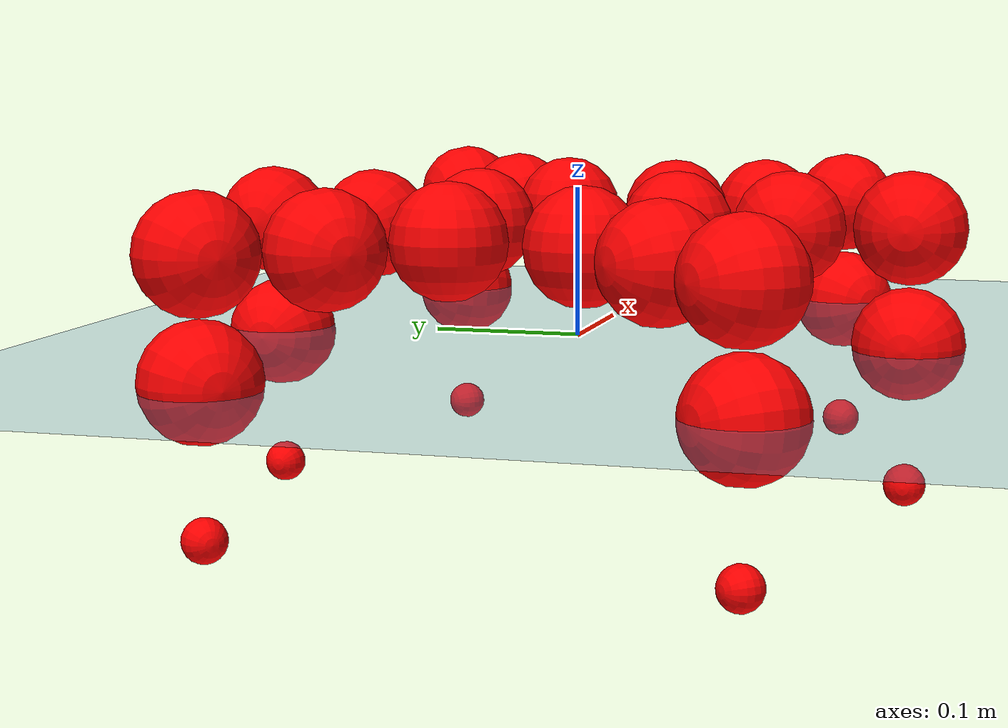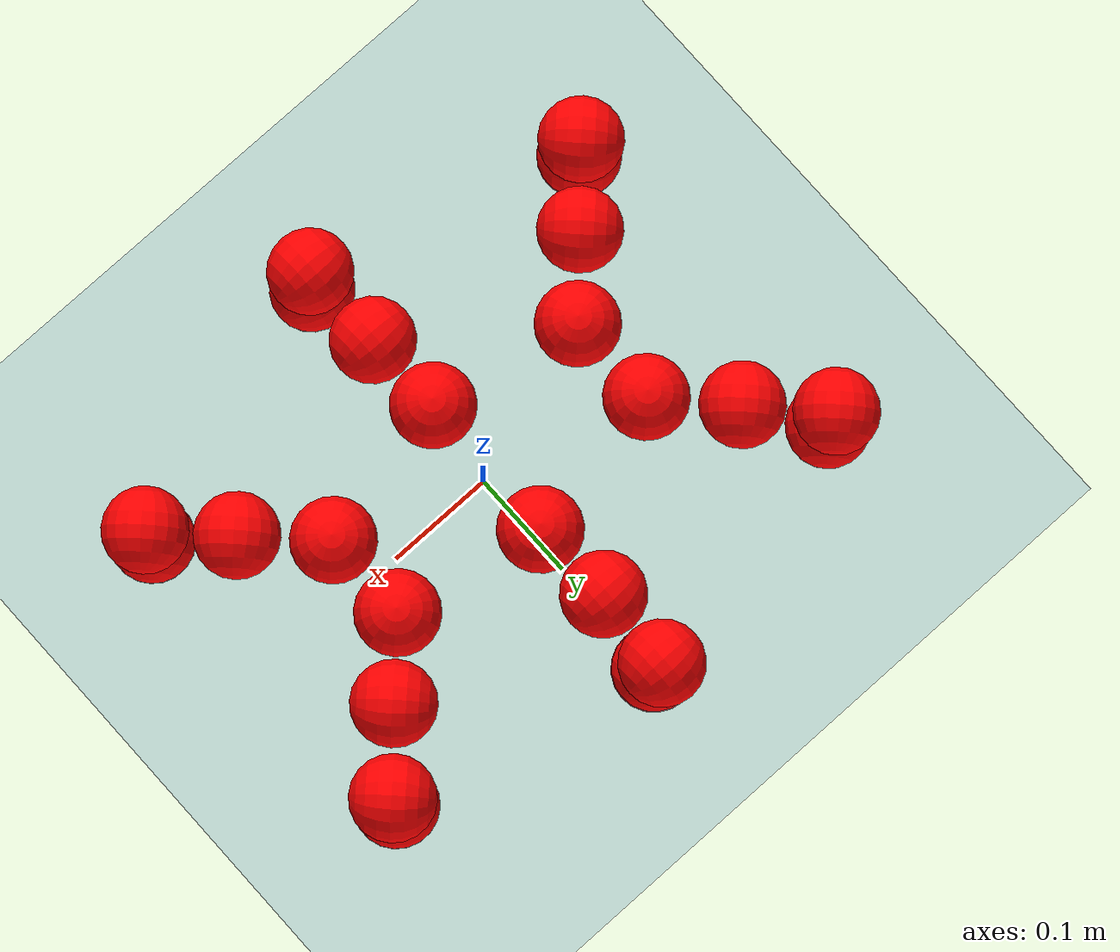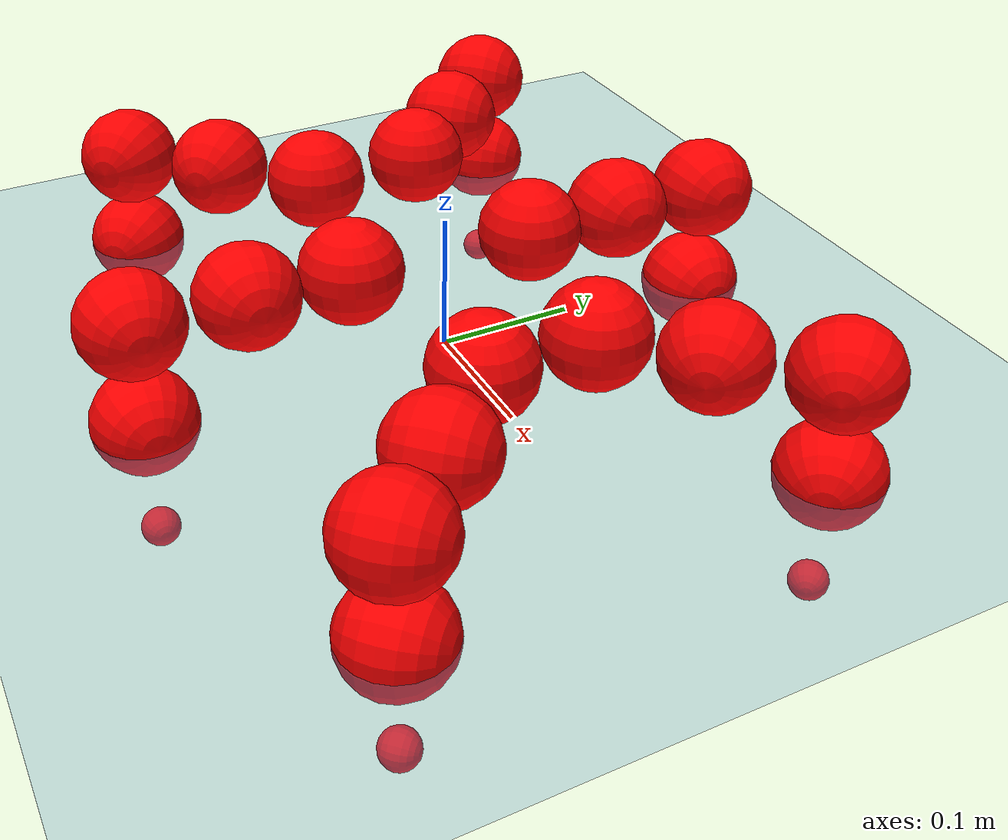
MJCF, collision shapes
<mujoco model="Golem">
  <compiler angle="radian" assetdir="assets" balanceinertia="true" inertiafromgeom="false"/>

  <option timestep="0.005" density="1.2" viscosity="2e-05"/>

  <size nkey="1"/>

  <visual>
    <quality shadowsize="8192"/>
    <map shadowclip="0.5"/>
  </visual>

  <default>
    <default class="/">
      <joint armature="0.01" damping="0.01" frictionloss="0.01"/>
      <geom contype="0" conaffinity="0" group="1" solref="-1000 -80"/>
      <site size="0.01 0.005 0.005" group="5"/>
      <general forcelimited="true" biastype="affine" gainprm="25" biasprm="0 -25 -0.5"/>
      <default class="visual">
        <geom type="mesh" group="2"/>
      </default>
      <default class="collision">
        <geom group="3"/>
      </default>
      <default class="foot">
        <geom size="0.01 0 0" condim="6" group="4" priority="1" solimp="0.015 1 0.01"/>
      </default>
      <default class="reward_collision_sphere">
        <geom group="5" rgba="1 0 0 1"/>
      </default>
    </default>
  </default>

  <asset>
    <texture type="skybox" colorspace="auto" name="//unnamed_texture_0" builtin="gradient" rgb1="0.95 0.95 0.95" rgb2="0.95 0.95 0.95" width="100" height="600"/>
    <texture type="2d" colorspace="auto" name="texplane" builtin="checker" rgb1="0.345 0.575 0.748" rgb2="0.345 0.575 0.748" markrgb="1 1 1" width="512" height="512"/>
    <material name="MatPlane" class="/" texture="texplane" texuniform="true" texrepeat="2 2" specular="0.9"/>
    <mesh name="body" class="/" file="body.stl" scale="0.001 0.001 0.001"/>
    <mesh name="coxa" class="/" file="coxa.stl" scale="0.001 0.001 0.001"/>
    <mesh name="femur" class="/" file="femur.stl" scale="0.001 0.001 0.001"/>
    <mesh name="tibia" class="/" file="tibia.stl" scale="0.001 0.001 0.001"/>
    <mesh name="tarsus" class="/" file="tarsus.stl" scale="0.001 0.001 0.001"/>
  </asset>

  <worldbody>
    <geom name="floor" class="/" size="100 100 0.125" type="plane" group="0" material="MatPlane"/>
    <light name="toplight_shadow" class="/" pos="0 0 5" dir="0.0990148 0.0990148 -0.990148" type="directional" ambient="0.04 0.04 0.04" diffuse="0.55 0.55 0.55" specular="0.12 0.12 0.12"/>
    <light name="toplight_fill" class="/" pos="0 0 5" dir="0.0990148 0.0990148 -0.990148" type="directional" castshadow="false" ambient="0.04 0.04 0.04" diffuse="0.3 0.3 0.3" specular="0.08 0.08 0.08"/>
    <body name="trunk" pos="-0.00275433 0.000442374 -0.00093226" quat="1 0.000726588 -0.000219822 0.000282758">
      <inertial pos="0.000758161 0.000793492 -0.000449957" quat="0.999906 0.00693282 0.0090554 -0.00761315" mass="2.84225" diaginertia="0.00491206 0.00210787 0.0217072"/>
      <joint name="//unnamed_joint_0" type="free"/>
      <geom name="//unnamed_geom_1" class="/" pos="0 0 0.0750645" quat="1 0 0 0" type="mesh" rgba="0.9 0.9 0.9 1" mesh="body"/>
      <site name="imu" class="/" pos="0.11323 0.0120506 0.104291" size="0.0092524"/>
      <camera name="track" class="/" pos="0 -1.4641 0" quat="0.707107 0.707107 0 0" mode="trackcom"/>
      <camera name="ego_camera" class="/" pos="0.113202 0 0.117288" quat="-0.5 -0.5 0.5 0.5"/>
      <body name="coxa_RR" pos="-0.156585 -0.0586137 0.077233" quat="0.382607 -4.34342e-05 0.00111757 -0.923911">
        <inertial pos="0.00282891 0.00237315 0.00267613" quat="0.99999 -0.00203185 -0.00179504 0.00342606" mass="0.164914" diaginertia="0.00512292 0.00220154 0.022373"/>
        <joint name="coxa_joint_RR" class="/" pos="0 0 0" axis="0.000714102 -0.00071176 -0.999999" range="-3.13894 3.12007" armature="0.00977882" damping="0.0174487" frictionloss="0.00903691"/>
        <geom name="//unnamed_geom_2" class="/" type="mesh" rgba="0.2 0.2 0.2 1" mesh="coxa"/>
        <geom name="//unnamed_geom_3" class="reward_collision_sphere" size="0.0370096" pos="-0.0261236 0 0"/>
        <body name="femur_RR" pos="0.0542545 0.00242244 -0.00144343" quat="0.499618 -0.499008 0.50118 0.500192">
          <inertial pos="0.00199623 0.00210312 -4.88727e-05" quat="0.999946 -0.00864337 0.00281516 -0.00498424" mass="0.156405" diaginertia="0.005001 0.00209345 0.0219517"/>
          <joint name="femur_joint_RR" class="/" pos="0 0 0" axis="-0.0024987 0.0019255 -0.999995" stiffness="0.0106248" range="-3.08377 3.08237" armature="0.00938499" damping="0.020779" frictionloss="0.010277"/>
          <geom name="//unnamed_geom_4" class="/" type="mesh" rgba="0.9 0.9 0.9 1" mesh="femur"/>
          <geom name="//unnamed_geom_5" class="reward_collision_sphere" size="0.0370096"/>
          <body name="tibia_RR" pos="0.00127617 -0.077601 0.00339076" quat="-0.00121263 0.999999 0.000626114 -0.000437042">
            <inertial pos="-0.00276347 -0.00103498 -0.000967187" quat="0.999935 0.00362242 -0.00559105 -0.00925882" mass="0.160488" diaginertia="0.00515066 0.00213398 0.0229745"/>
            <joint name="tibia_joint_RR" class="/" pos="0 0 0" axis="0.0122143 -0.00432596 0.999916" stiffness="0.0100993" range="-3.18115 3.14427" armature="0.00901631" damping="0.00162071" frictionloss="0.00916101"/>
            <geom name="//unnamed_geom_6" class="/" type="mesh" rgba="0.2 0.2 0.2 1" mesh="tibia"/>
            <geom name="//unnamed_geom_7" class="reward_collision_sphere" size="0.0370096"/>
            <body name="tarsus_RR" pos="0.0748598 0.00264252 -0.000433402" quat="0.999999 0.000953246 0.000152765 -0.000919614">
              <inertial pos="0.0509234 0.00138313 -0.00202222" quat="0.498918 0.499245 0.500205 0.501627" mass="0.162351" diaginertia="0.00513016 0.00217783 0.0224498"/>
              <joint name="tarsus_joint_RR" class="/" pos="0 0 0" axis="-0.00102163 0.00901525 0.999959" range="-3.13149 3.14003" armature="0.00892652" damping="0.0351585" frictionloss="0.00805906"/>
              <geom name="//unnamed_geom_8" class="/" type="mesh" rgba="0.9 0.9 0.9 1" mesh="tarsus"/>
              <geom name="foot_1" class="foot" size="0.00926576" pos="0.0975281 0 0" quat="0 -0.707107 0 0.707107"/>
              <geom name="//unnamed_geom_10" class="reward_collision_sphere" size="0.0370096"/>
              <geom name="//unnamed_geom_11" class="reward_collision_sphere" size="0.0138786" pos="0.0936096 0 0"/>
              <site name="foot_1" class="foot" pos="0.0975281 0 0" quat="0 -0.707107 0 0.707107" size="0.0092524"/>
            </body>
          </body>
        </body>
      </body>
      <body name="coxa_RM" pos="-0.00208221 -0.0953117 0.0769753" quat="0.707419 -0.00064116 -8.43929e-05 -0.706794">
        <inertial pos="-0.00201726 -0.000850361 -9.15798e-05" quat="0.999999 -0.000749603 0.000159941 -0.000825113" mass="0.162906" diaginertia="0.00496519 0.00222093 0.0225727"/>
        <joint name="coxa_joint_RM" class="/" pos="0 0 0" axis="0.00225395 -0.00174086 -0.999996" range="-3.0871 3.12746" armature="0.0106102" damping="0.00868665" frictionloss="0.00928605"/>
        <geom name="//unnamed_geom_12" class="/" type="mesh" rgba="0.2 0.2 0.2 1" mesh="coxa"/>
        <geom name="//unnamed_geom_13" class="reward_collision_sphere" size="0.0370096" pos="-0.0261236 0 0"/>
        <body name="femur_RM" pos="0.0484536 0.00102225 0.00141649" quat="0.49892 -0.500187 0.500967 0.499924">
          <inertial pos="-0.000860939 -0.00292428 0.00194213" quat="0.999979 0.00432855 -0.00481072 -0.000263705" mass="0.161458" diaginertia="0.00479776 0.00205834 0.0218179"/>
          <joint name="femur_joint_RM" class="/" pos="0 0 0" axis="0.00180782 -0.000675301 -0.999998" stiffness="0.00111096" range="-3.16238 3.11999" armature="0.00863542" damping="0.016275" frictionloss="0.00926914"/>
          <geom name="//unnamed_geom_14" class="/" type="mesh" rgba="0.9 0.9 0.9 1" mesh="femur"/>
          <geom name="//unnamed_geom_15" class="reward_collision_sphere" size="0.0370096"/>
          <body name="tibia_RM" pos="-0.00141888 -0.0781963 0.000685629" quat="-0.000473032 1 2.78421e-05 4.54176e-05">
            <inertial pos="-0.00282867 -0.000573752 -0.00078872" quat="0.99991 0.00301746 -0.000328849 0.0130407" mass="0.159177" diaginertia="0.00510774 0.00207428 0.0221771"/>
            <joint name="tibia_joint_RM" class="/" pos="0 0 0" axis="0.00284442 -0.00526218 0.999982" range="-3.13745 3.13869" armature="0.00957328" damping="0" frictionloss="0.00885759"/>
            <geom name="//unnamed_geom_16" class="/" type="mesh" rgba="0.2 0.2 0.2 1" mesh="tibia"/>
            <geom name="//unnamed_geom_17" class="reward_collision_sphere" size="0.0370096"/>
            <body name="tarsus_RM" pos="0.0755097 0.000246038 -0.00233026" quat="1 0.000760305 -0.000563291 0.000211567">
              <inertial pos="0.0523043 -0.000811232 -4.97257e-05" quat="0.498122 0.49408 0.502283 0.505442" mass="0.15693" diaginertia="0.00507446 0.00208186 0.0235254"/>
              <joint name="tarsus_joint_RM" class="/" pos="0 0 0" axis="-0.0119696 -0.00281754 0.999924" range="-3.19578 3.15988" armature="0.0078886" damping="0.00782023" frictionloss="0.00876999"/>
              <geom name="//unnamed_geom_18" class="/" type="mesh" rgba="0.9 0.9 0.9 1" mesh="tarsus"/>
              <geom name="foot_2" class="foot" size="0.00967815" pos="0.0975281 0 0" quat="0 -0.707107 0 0.707107"/>
              <geom name="//unnamed_geom_20" class="reward_collision_sphere" size="0.0370096"/>
              <geom name="//unnamed_geom_21" class="reward_collision_sphere" size="0.0138786" pos="0.0936096 0 0"/>
              <site name="foot_2" class="foot" pos="0.0975281 0 0" quat="0 -0.707107 0 0.707107" size="0.0092524"/>
            </body>
          </body>
        </body>
      </body>
      <body name="coxa_RF" pos="0.153274 -0.0583876 0.0750344" quat="0.924003 -0.000277101 -0.00092171 -0.382385">
        <inertial pos="0.00194055 0.00175656 2.50182e-05" quat="0.999996 -0.00117408 0.00172556 -0.0019494" mass="0.158454" diaginertia="0.00500403 0.00203859 0.0222797"/>
        <joint name="coxa_joint_RF" class="/" pos="0 0 0" axis="0.00659151 -0.0151854 -0.999863" stiffness="0.00584799" range="-3.0878 3.10432" armature="0.00824971" damping="0.0312619" frictionloss="0.00887845"/>
        <geom name="//unnamed_geom_22" class="/" type="mesh" rgba="0.2 0.2 0.2 1" mesh="coxa"/>
        <geom name="//unnamed_geom_23" class="reward_collision_sphere" size="0.0370096" pos="-0.0261236 0 0"/>
        <body name="femur_RF" pos="0.0543195 0.000305575 -0.00241768" quat="0.499694 -0.49957 0.499872 0.500863">
          <inertial pos="1.15096e-05 -0.00295942 0.00139255" quat="0.999932 0.0100956 -0.00192694 0.00559926" mass="0.161084" diaginertia="0.00491828 0.00206366 0.021322"/>
          <joint name="femur_joint_RF" class="/" pos="0 0 0" axis="-0.00389198 0.00391021 -0.999985" range="-3.12084 3.08223" armature="0.00980698" damping="0.00439119" frictionloss="0.0104932"/>
          <geom name="//unnamed_geom_24" class="/" type="mesh" rgba="0.9 0.9 0.9 1" mesh="femur"/>
          <geom name="//unnamed_geom_25" class="reward_collision_sphere" size="0.0370096"/>
          <body name="tibia_RF" pos="-0.00164244 -0.0764965 -0.000131223" quat="-7.69368e-05 0.999999 -0.00123325 -6.58406e-05">
            <inertial pos="0.000587057 0.000299613 -1.56719e-05" quat="0.999915 0.00500538 -0.00098639 0.0120019" mass="0.153179" diaginertia="0.00481752 0.00203135 0.0217103"/>
            <joint name="tibia_joint_RF" class="/" pos="0 0 0" axis="-0.00113992 -0.000979252 0.999999" range="-3.1377 3.17418" armature="0.00893069" damping="0" frictionloss="0.0100592"/>
            <geom name="//unnamed_geom_26" class="/" type="mesh" rgba="0.2 0.2 0.2 1" mesh="tibia"/>
            <geom name="//unnamed_geom_27" class="reward_collision_sphere" size="0.0370096"/>
            <body name="tarsus_RF" pos="0.0755376 -0.00056098 0.000109564" quat="1 0.000224685 -0.000256451 -0.000467957">
              <inertial pos="0.0521004 4.83142e-05 -0.000827399" quat="0.488889 0.498642 0.506759 0.505509" mass="0.152611" diaginertia="0.00485833 0.00205339 0.0208356"/>
              <joint name="tarsus_joint_RF" class="/" pos="0 0 0" axis="0.00298973 0.00726842 0.999969" stiffness="0.000219646" range="-3.13986 3.15995" armature="0.00915372" damping="0.00696905" frictionloss="0.0105604"/>
              <geom name="//unnamed_geom_28" class="/" type="mesh" rgba="0.9 0.9 0.9 1" mesh="tarsus"/>
              <geom name="foot_3" class="foot" size="0.00995851" pos="0.0975281 0 0" quat="0 -0.707107 0 0.707107"/>
              <geom name="//unnamed_geom_30" class="reward_collision_sphere" size="0.0370096"/>
              <geom name="//unnamed_geom_31" class="reward_collision_sphere" size="0.0138786" pos="0.0936096 0 0"/>
              <site name="foot_3" class="foot" pos="0.0975281 0 0" quat="0 -0.707107 0 0.707107" size="0.0092524"/>
            </body>
          </body>
        </body>
      </body>
      <body name="coxa_LR" pos="-0.15778 0.0626008 0.0782076" quat="0.383388 0.000600275 4.72319e-05 0.923587">
        <inertial pos="9.938e-05 0.000408819 0.0020354" quat="0.999999 -0.000556744 -0.000272691 -0.00142624" mass="0.152644" diaginertia="0.00483537 0.00207327 0.0217636"/>
        <joint name="coxa_joint_LR" class="/" pos="0 0 0" axis="0.00228433 -0.012049 -0.999925" range="-3.09016 3.13662" armature="0.00809914" damping="0.0206252" frictionloss="0.00926592"/>
        <geom name="//unnamed_geom_32" class="/" type="mesh" rgba="0.2 0.2 0.2 1" mesh="coxa"/>
        <geom name="//unnamed_geom_33" class="reward_collision_sphere" size="0.0370096" pos="-0.0261236 0 0"/>
        <body name="femur_LR" pos="0.0542662 -0.00170111 -0.000997327" quat="0.500762 -0.50019 0.499921 0.499125">
          <inertial pos="2.82157e-05 0.000697331 0.00242022" quat="0.999939 -0.00728038 0.00833986 0.00051915" mass="0.1622" diaginertia="0.00517494 0.00203149 0.0229922"/>
          <joint name="femur_joint_LR" class="/" pos="0 0 0" axis="5.78363e-06 0.000131322 1" range="-3.18065 3.18089" armature="0.00918864" damping="0" frictionloss="0.00864253"/>
          <geom name="//unnamed_geom_34" class="/" type="mesh" rgba="0.9 0.9 0.9 1" mesh="femur"/>
          <geom name="//unnamed_geom_35" class="reward_collision_sphere" size="0.0370096"/>
          <body name="tibia_LR" pos="-0.00160646 -0.0784743 -0.00113821" quat="-0.000202925 1 -0.000193332 0.000418563">
            <inertial pos="-0.00108751 -0.00136693 -0.00170987" quat="0.999996 -0.0013978 0.00239936 0.00026159" mass="0.15858" diaginertia="0.00504414 0.0021776 0.0215637"/>
            <joint name="tibia_joint_LR" class="/" pos="0 0 0" axis="0.00146961 0.000506445 -0.999999" range="-3.10385 3.19129" armature="0.00796709" damping="0.0088205" frictionloss="0.00837037"/>
            <geom name="//unnamed_geom_36" class="/" type="mesh" rgba="0.2 0.2 0.2 1" mesh="tibia"/>
            <geom name="//unnamed_geom_37" class="reward_collision_sphere" size="0.0370096"/>
            <body name="tarsus_LR" pos="0.0744561 -0.00112168 0.00137766" quat="1 0.000125323 -0.000122543 -3.73129e-05">
              <inertial pos="0.0528131 0.00121578 0.00126539" quat="0.502748 0.501785 0.497512 0.497933" mass="0.15745" diaginertia="0.0049589 0.0022333 0.0227115"/>
              <joint name="tarsus_joint_LR" class="/" pos="0 0 0" axis="-0.00722414 0.00500507 -0.999961" stiffness="0.0108607" range="-3.13277 3.08809" armature="0.00923004" damping="0.0287506" frictionloss="0.0104849"/>
              <geom name="//unnamed_geom_38" class="/" type="mesh" rgba="0.9 0.9 0.9 1" mesh="tarsus"/>
              <geom name="foot_4" class="foot" size="0.00981361" pos="0.0975281 0 0" quat="0.707107 0 -0.707107 0"/>
              <geom name="//unnamed_geom_40" class="reward_collision_sphere" size="0.0370096"/>
              <geom name="//unnamed_geom_41" class="reward_collision_sphere" size="0.0138786" pos="0.0936096 0 0"/>
              <site name="foot_4" class="foot" pos="0.0975281 0 0" quat="0.707107 0 -0.707107 0" size="0.0092524"/>
            </body>
          </body>
        </body>
      </body>
      <body name="coxa_LM" pos="0.000545942 0.0940239 0.0761813" quat="0.706217 0.00014425 -0.000102647 0.707995">
        <inertial pos="0.00204532 0.00124415 0.00185336" quat="1 -0.000126817 -0.000110072 -1.91089e-05" mass="0.158171" diaginertia="0.00508349 0.00210234 0.0221804"/>
        <joint name="coxa_joint_LM" class="/" pos="0 0 0" axis="0.0032491 6.8357e-05 -0.999995" range="-3.08301 3.08072" armature="0.0103698" damping="0.00989728" frictionloss="0.0105538"/>
        <geom name="//unnamed_geom_42" class="/" type="mesh" rgba="0.2 0.2 0.2 1" mesh="coxa"/>
        <geom name="//unnamed_geom_43" class="reward_collision_sphere" size="0.0370096" pos="-0.0261236 0 0"/>
        <body name="femur_LM" pos="0.0488914 0.00295458 -0.00211956" quat="0.499851 -0.500656 0.499863 0.49963">
          <inertial pos="-0.00276726 0.00261833 3.30183e-05" quat="0.999913 0.00906178 -0.00897119 -0.00329052" mass="0.160243" diaginertia="0.00523281 0.0020518 0.0226553"/>
          <joint name="femur_joint_LM" class="/" pos="0 0 0" axis="0.00819559 0.00121957 0.999966" stiffness="0.0119973" range="-3.09632 3.1402" armature="0.00861182" damping="0" frictionloss="0.00876188"/>
          <geom name="//unnamed_geom_44" class="/" type="mesh" rgba="0.9 0.9 0.9 1" mesh="femur"/>
          <geom name="//unnamed_geom_45" class="reward_collision_sphere" size="0.0370096"/>
          <body name="tibia_LM" pos="-0.000437857 -0.0748711 -0.0024834" quat="-4.02144e-05 1 -0.00018809 0.000275335">
            <inertial pos="0.00166181 0.00178116 0.00273469" quat="0.999961 -0.00553903 0.00600852 -0.00330708" mass="0.156504" diaginertia="0.00483227 0.00208125 0.0216828"/>
            <joint name="tibia_joint_LM" class="/" pos="0 0 0" axis="0.0142309 0.00519898 -0.999885" range="-3.17635 3.19328" armature="0.00924437" damping="0" frictionloss="0.00794356"/>
            <geom name="//unnamed_geom_46" class="/" type="mesh" rgba="0.2 0.2 0.2 1" mesh="tibia"/>
            <geom name="//unnamed_geom_47" class="reward_collision_sphere" size="0.0370096"/>
            <body name="tarsus_LM" pos="0.0790902 -0.00364669 0.00136213" quat="1 -0.000245795 -0.000189133 0.000197322">
              <inertial pos="0.0517427 0.000113724 0.000313838" quat="0.491234 0.495399 0.505562 0.507618" mass="0.165079" diaginertia="0.00530488 0.0021331 0.0221471"/>
              <joint name="tarsus_joint_LM" class="/" pos="0 0 0" axis="-0.0110467 -0.00434983 -0.99993" stiffness="0.00942168" range="-3.13933 3.08255" armature="0.00955368" damping="0.0148017" frictionloss="0.0091957"/>
              <geom name="//unnamed_geom_48" class="/" type="mesh" rgba="0.9 0.9 0.9 1" mesh="tarsus"/>
              <geom name="foot_5" class="foot" size="0.01004" pos="0.0975281 0 0" quat="0.707107 0 -0.707107 0"/>
              <geom name="//unnamed_geom_50" class="reward_collision_sphere" size="0.0370096"/>
              <geom name="//unnamed_geom_51" class="reward_collision_sphere" size="0.0138786" pos="0.0936096 0 0"/>
              <site name="foot_5" class="foot" pos="0.0975281 0 0" quat="0.707107 0 -0.707107 0" size="0.0092524"/>
            </body>
          </body>
        </body>
      </body>
      <body name="coxa_LF" pos="0.153608 0.0593453 0.0753741" quat="0.923928 9.95821e-05 -0.000293784 0.382565">
        <inertial pos="0.0006331 0.000881366 0.000196167" quat="1 -3.48571e-05 -0.000557241 0.000502471" mass="0.155097" diaginertia="0.00486984 0.00211337 0.022254"/>
        <joint name="coxa_joint_LF" class="/" pos="0 0 0" axis="0.00547635 -0.00185172 -0.999983" range="-3.16174 3.0892" armature="0.00990506" damping="0.0129602" frictionloss="0.00938081"/>
        <geom name="//unnamed_geom_52" class="/" type="mesh" rgba="0.2 0.2 0.2 1" mesh="coxa"/>
        <geom name="//unnamed_geom_53" class="reward_collision_sphere" size="0.0370096" pos="-0.0261236 0 0"/>
        <body name="femur_LF" pos="0.0491584 0.00130232 -0.00110625" quat="0.500506 -0.500068 0.499338 0.500088">
          <inertial pos="-0.00236339 0.0022524 -0.00120899" quat="0.999996 0.00101815 0.00268401 -0.000489487" mass="0.157518" diaginertia="0.00487915 0.00195685 0.0211853"/>
          <joint name="femur_joint_LF" class="/" pos="0 0 0" axis="0.012945 0.00244819 0.999913" stiffness="0.00993212" range="-3.14491 3.09894" armature="0.00805408" damping="0" frictionloss="0.00941131"/>
          <geom name="//unnamed_geom_54" class="/" type="mesh" rgba="0.9 0.9 0.9 1" mesh="femur"/>
          <geom name="//unnamed_geom_55" class="reward_collision_sphere" size="0.0370096"/>
          <body name="tibia_LF" pos="-0.0013724 -0.0781376 0.0039571" quat="0.000451617 1 4.4906e-05 4.7778e-05">
            <inertial pos="0.00157744 0.00280732 -0.000412221" quat="0.999953 -0.0061542 -0.00750628 -4.81204e-05" mass="0.156711" diaginertia="0.00497977 0.00215054 0.0227477"/>
            <joint name="tibia_joint_LF" class="/" pos="0 0 0" axis="0.00364346 -0.000956069 -0.999993" stiffness="0.00108897" range="-3.14583 3.08427" armature="0.00885807" damping="0" frictionloss="0.00932869"/>
            <geom name="//unnamed_geom_56" class="/" type="mesh" rgba="0.2 0.2 0.2 1" mesh="tibia"/>
            <geom name="//unnamed_geom_57" class="reward_collision_sphere" size="0.0370096"/>
            <body name="tarsus_LF" pos="0.0774724 0.00168732 -0.0012863" quat="1 0.000350569 -5.89125e-06 0.00035871">
              <inertial pos="0.0549319 -0.00196124 -0.00120344" quat="0.4972 0.498533 0.503127 0.501119" mass="0.151267" diaginertia="0.00476977 0.00203837 0.021518"/>
              <joint name="tarsus_joint_LF" class="/" pos="0 0 0" axis="-0.00390949 -0.00991729 -0.999943" range="-3.09367 3.12131" armature="0.00895147" damping="0.0153419" frictionloss="0.00941517"/>
              <geom name="//unnamed_geom_58" class="/" type="mesh" rgba="0.9 0.9 0.9 1" mesh="tarsus"/>
              <geom name="foot_6" class="foot" size="0.0082988" pos="0.0975281 0 0" quat="0.707107 0 -0.707107 0"/>
              <geom name="//unnamed_geom_60" class="reward_collision_sphere" size="0.0370096"/>
              <geom name="//unnamed_geom_61" class="reward_collision_sphere" size="0.0138786" pos="0.0936096 0 0"/>
              <site name="foot_6" class="foot" pos="0.0975281 0 0" quat="0.707107 0 -0.707107 0" size="0.0092524"/>
            </body>
          </body>
        </body>
      </body>
    </body>
  </worldbody>

  <contact>
    <pair class="/" geom1="floor" geom2="foot_1" name="//unnamed_contact_0"/>
    <pair class="/" geom1="floor" geom2="foot_2" name="//unnamed_contact_1"/>
    <pair class="/" geom1="floor" geom2="foot_3" name="//unnamed_contact_2"/>
    <pair class="/" geom1="floor" geom2="foot_4" name="//unnamed_contact_3"/>
    <pair class="/" geom1="floor" geom2="foot_5" name="//unnamed_contact_4"/>
    <pair class="/" geom1="floor" geom2="foot_6" name="//unnamed_contact_5"/>
  </contact>

  <actuator>
    <general name="coxa_joint_RR" class="/" joint="coxa_joint_RR" forcerange="-6.49678 6.49678" gainprm="23.4082" biasprm="0 -23.4082 -0.443251"/>
    <general name="femur_joint_RR" class="/" joint="femur_joint_RR" forcerange="-6.71179 6.71179" gainprm="23.4082" biasprm="0 -23.4082 -0.443251"/>
    <general name="tibia_joint_RR" class="/" joint="tibia_joint_RR" forcerange="-6.55127 6.55127" gainprm="23.4082" biasprm="0 -23.4082 -0.443251"/>
    <general name="tarsus_joint_RR" class="/" joint="tarsus_joint_RR" forcerange="-6.50265 6.50265" gainprm="23.4082" biasprm="0 -23.4082 -0.443251"/>
    <general name="coxa_joint_RM" class="/" joint="coxa_joint_RM" forcerange="-6.41308 6.41308" gainprm="23.4082" biasprm="0 -23.4082 -0.443251"/>
    <general name="femur_joint_RM" class="/" joint="femur_joint_RM" forcerange="-6.08973 6.08973" gainprm="23.4082" biasprm="0 -23.4082 -0.443251"/>
    <general name="tibia_joint_RM" class="/" joint="tibia_joint_RM" forcerange="-6.77516 6.77516" gainprm="23.4082" biasprm="0 -23.4082 -0.443251"/>
    <general name="tarsus_joint_RM" class="/" joint="tarsus_joint_RM" forcerange="-7.21295 7.21295" gainprm="23.4082" biasprm="0 -23.4082 -0.443251"/>
    <general name="coxa_joint_RF" class="/" joint="coxa_joint_RF" forcerange="-6.12795 6.12795" gainprm="23.4082" biasprm="0 -23.4082 -0.443251"/>
    <general name="femur_joint_RF" class="/" joint="femur_joint_RF" forcerange="-6.06502 6.06502" gainprm="23.4082" biasprm="0 -23.4082 -0.443251"/>
    <general name="tibia_joint_RF" class="/" joint="tibia_joint_RF" forcerange="-7.46093 7.46093" gainprm="23.4082" biasprm="0 -23.4082 -0.443251"/>
    <general name="tarsus_joint_RF" class="/" joint="tarsus_joint_RF" forcerange="-7.34876 7.34876" gainprm="23.4082" biasprm="0 -23.4082 -0.443251"/>
    <general name="coxa_joint_LR" class="/" joint="coxa_joint_LR" forcerange="-6.9878 6.9878" gainprm="23.4082" biasprm="0 -23.4082 -0.443251"/>
    <general name="femur_joint_LR" class="/" joint="femur_joint_LR" forcerange="-6.06828 6.06828" gainprm="23.4082" biasprm="0 -23.4082 -0.443251"/>
    <general name="tibia_joint_LR" class="/" joint="tibia_joint_LR" forcerange="-6.32068 6.32068" gainprm="23.4082" biasprm="0 -23.4082 -0.443251"/>
    <general name="tarsus_joint_LR" class="/" joint="tarsus_joint_LR" forcerange="-7.09265 7.09265" gainprm="23.4082" biasprm="0 -23.4082 -0.443251"/>
    <general name="coxa_joint_LM" class="/" joint="coxa_joint_LM" forcerange="-7.4228 7.4228" gainprm="23.4082" biasprm="0 -23.4082 -0.443251"/>
    <general name="femur_joint_LM" class="/" joint="femur_joint_LM" forcerange="-6.8834 6.8834" gainprm="23.4082" biasprm="0 -23.4082 -0.443251"/>
    <general name="tibia_joint_LM" class="/" joint="tibia_joint_LM" forcerange="-6.79072 6.79072" gainprm="23.4082" biasprm="0 -23.4082 -0.443251"/>
    <general name="tarsus_joint_LM" class="/" joint="tarsus_joint_LM" forcerange="-6.20525 6.20525" gainprm="23.4082" biasprm="0 -23.4082 -0.443251"/>
    <general name="coxa_joint_LF" class="/" joint="coxa_joint_LF" forcerange="-6.72044 6.72044" gainprm="23.4082" biasprm="0 -23.4082 -0.443251"/>
    <general name="femur_joint_LF" class="/" joint="femur_joint_LF" forcerange="-6.78963 6.78963" gainprm="23.4082" biasprm="0 -23.4082 -0.443251"/>
    <general name="tibia_joint_LF" class="/" joint="tibia_joint_LF" forcerange="-7.20578 7.20578" gainprm="23.4082" biasprm="0 -23.4082 -0.443251"/>
    <general name="tarsus_joint_LF" class="/" joint="tarsus_joint_LF" forcerange="-7.01391 7.01391" gainprm="23.4082" biasprm="0 -23.4082 -0.443251"/>
  </actuator>

  <sensor>
    <gyro site="imu" name="imu_angular_velocity"/>
    <velocimeter site="imu" name="imu_linear_velocity"/>
    <framelinvel objtype="site" objname="foot_1" name="foot_1_global_linear_velocity"/>
    <framelinvel objtype="site" objname="foot_2" name="foot_2_global_linear_velocity"/>
    <framelinvel objtype="site" objname="foot_3" name="foot_3_global_linear_velocity"/>
    <framelinvel objtype="site" objname="foot_4" name="foot_4_global_linear_velocity"/>
    <framelinvel objtype="site" objname="foot_5" name="foot_5_global_linear_velocity"/>
    <framelinvel objtype="site" objname="foot_6" name="foot_6_global_linear_velocity"/>
  </sensor>

  <keyframe>
    <key name="home" qpos="0 0 0.1457 1 0 0 0 0 0 0 0 0 0 0 0 0 0 0 0 0 0 0 0 0 0 0 0 0 0 0 0"/>
  </keyframe>
</mujoco>
